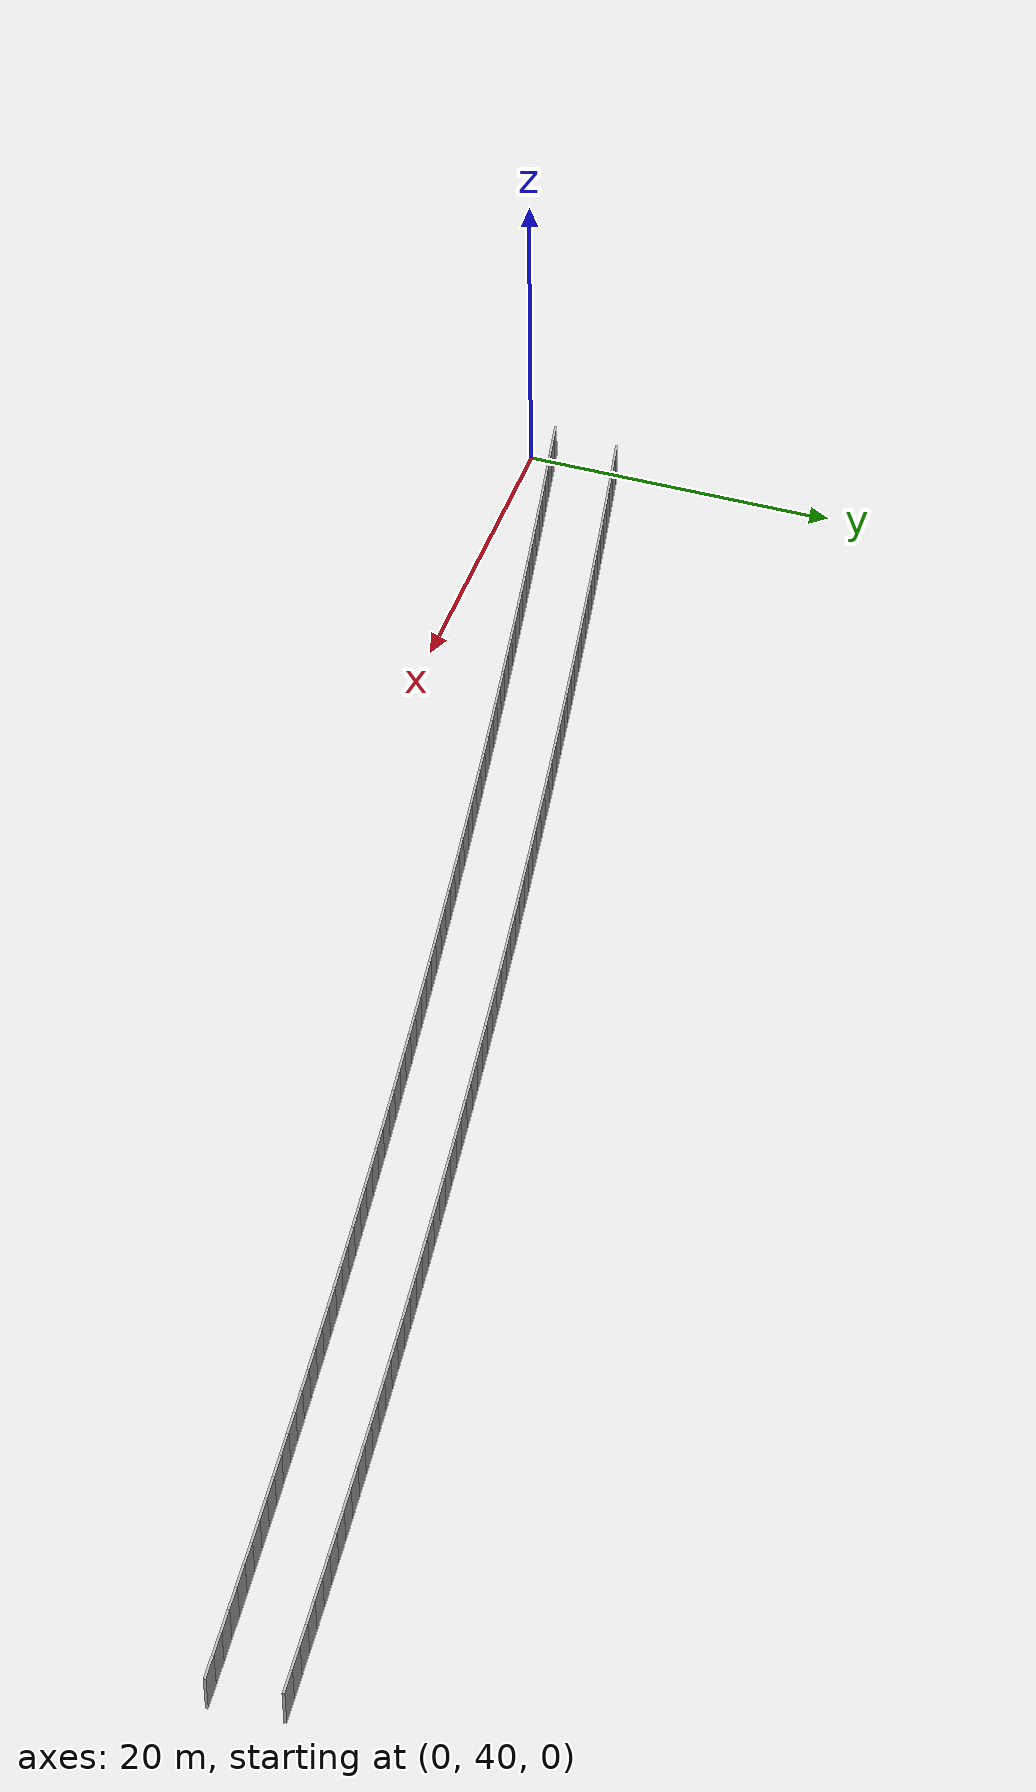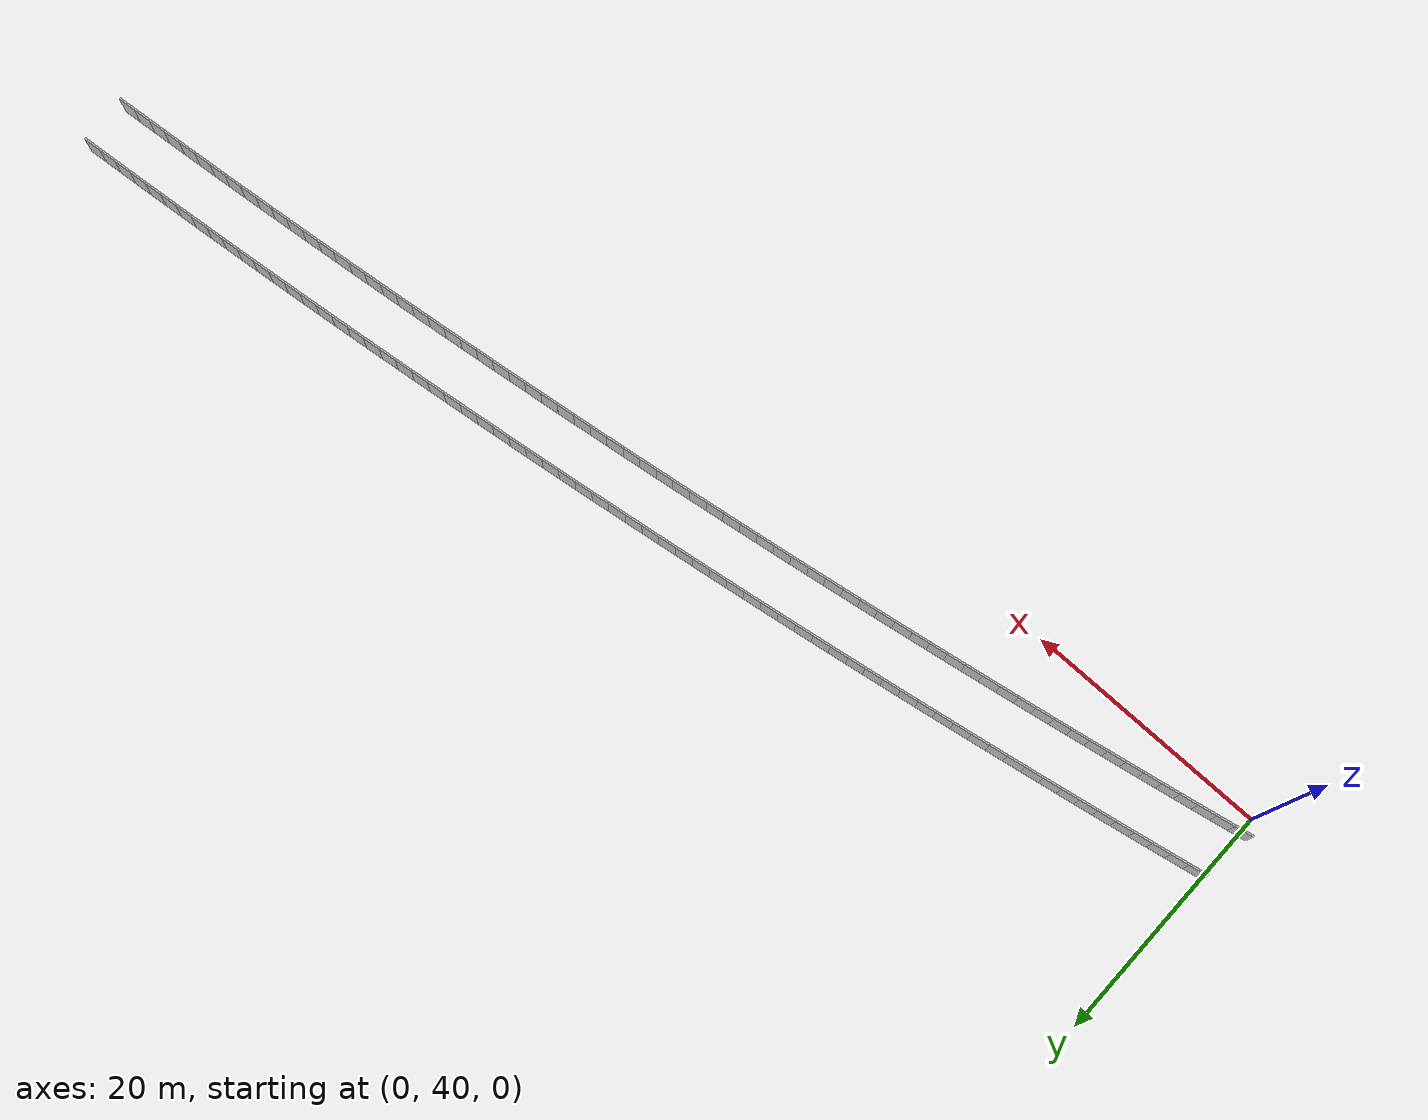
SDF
<sdf version="1.6">
 <model name="sps_1023">
  <static>1</static>
  <allow_auto_disable>0</allow_auto_disable>
  <link name="Wall2959">
   <collision name="collision"><geometry><box><size>1.49658 0.15 2.5</size></box></geometry></collision>
   <visual name="visual">
    <geometry><box><size>1.49658 0.15 2.5</size></box></geometry>
    <transparency>0.0</transparency>
   </visual>
   <pose>99.3093 55.6503 1.25 0 0 -3.05355</pose>
  </link>
  <link name="Wall2960">
   <collision name="collision"><geometry><box><size>1.49641 0.15 2.5</size></box></geometry></collision>
   <visual name="visual">
    <geometry><box><size>1.49641 0.15 2.5</size></box></geometry>
    <transparency>0.0</transparency>
   </visual>
   <pose>97.8187 55.5176 1.25 0 0 -3.05207</pose>
  </link>
  <link name="Wall2961">
   <collision name="collision"><geometry><box><size>1.49665 0.15 2.5</size></box></geometry></collision>
   <visual name="visual">
    <geometry><box><size>1.49665 0.15 2.5</size></box></geometry>
    <transparency>0.0</transparency>
   </visual>
   <pose>96.3282 55.3825 1.25 0 0 -3.05032</pose>
  </link>
  <link name="Wall2962">
   <collision name="collision"><geometry><box><size>1.49644 0.15 2.5</size></box></geometry></collision>
   <visual name="visual">
    <geometry><box><size>1.49644 0.15 2.5</size></box></geometry>
    <transparency>0.0</transparency>
   </visual>
   <pose>94.838 55.2449 1.25 0 0 -3.04871</pose>
  </link>
  <link name="Wall2963">
   <collision name="collision"><geometry><box><size>1.49646 0.15 2.5</size></box></geometry></collision>
   <visual name="visual">
    <geometry><box><size>1.49646 0.15 2.5</size></box></geometry>
    <transparency>0.0</transparency>
   </visual>
   <pose>93.3481 55.105 1.25 0 0 -3.04724</pose>
  </link>
  <link name="Wall2964">
   <collision name="collision"><geometry><box><size>1.49647 0.15 2.5</size></box></geometry></collision>
   <visual name="visual">
    <geometry><box><size>1.49647 0.15 2.5</size></box></geometry>
    <transparency>0.0</transparency>
   </visual>
   <pose>91.8585 54.9627 1.25 0 0 -3.04548</pose>
  </link>
  <link name="Wall2965">
   <collision name="collision"><geometry><box><size>1.49656 0.15 2.5</size></box></geometry></collision>
   <visual name="visual">
    <geometry><box><size>1.49656 0.15 2.5</size></box></geometry>
    <transparency>0.0</transparency>
   </visual>
   <pose>90.3689 54.818 1.25 0 0 -3.04401</pose>
  </link>
  <link name="Wall2966">
   <collision name="collision"><geometry><box><size>1.49653 0.15 2.5</size></box></geometry></collision>
   <visual name="visual">
    <geometry><box><size>1.49653 0.15 2.5</size></box></geometry>
    <transparency>0.0</transparency>
   </visual>
   <pose>88.8796 54.6711 1.25 0 0 -3.04257</pose>
  </link>
  <link name="Wall2967">
   <collision name="collision"><geometry><box><size>1.49635 0.15 2.5</size></box></geometry></collision>
   <visual name="visual">
    <geometry><box><size>1.49635 0.15 2.5</size></box></geometry>
    <transparency>0.0</transparency>
   </visual>
   <pose>87.3906 54.5219 1.25 0 0 -3.04088</pose>
  </link>
  <link name="Wall2968">
   <collision name="collision"><geometry><box><size>1.49665 0.15 2.5</size></box></geometry></collision>
   <visual name="visual">
    <geometry><box><size>1.49665 0.15 2.5</size></box></geometry>
    <transparency>0.0</transparency>
   </visual>
   <pose>85.9018 54.3703 1.25 0 0 -3.03934</pose>
  </link>
  <link name="Wall2969">
   <collision name="collision"><geometry><box><size>1.49647 0.15 2.5</size></box></geometry></collision>
   <visual name="visual">
    <geometry><box><size>1.49647 0.15 2.5</size></box></geometry>
    <transparency>0.0</transparency>
   </visual>
   <pose>84.4132 54.2163 1.25 0 0 -3.03769</pose>
  </link>
  <link name="Wall2970">
   <collision name="collision"><geometry><box><size>1.49648 0.15 2.5</size></box></geometry></collision>
   <visual name="visual">
    <geometry><box><size>1.49648 0.15 2.5</size></box></geometry>
    <transparency>0.0</transparency>
   </visual>
   <pose>82.9249 54.0599 1.25 0 0 -3.03609</pose>
  </link>
  <link name="Wall2971">
   <collision name="collision"><geometry><box><size>1.49637 0.15 2.5</size></box></geometry></collision>
   <visual name="visual">
    <geometry><box><size>1.49637 0.15 2.5</size></box></geometry>
    <transparency>0.0</transparency>
   </visual>
   <pose>81.437 53.9011 1.25 0 0 -3.03448</pose>
  </link>
  <link name="Wall2972">
   <collision name="collision"><geometry><box><size>1.49661 0.15 2.5</size></box></geometry></collision>
   <visual name="visual">
    <geometry><box><size>1.49661 0.15 2.5</size></box></geometry>
    <transparency>0.0</transparency>
   </visual>
   <pose>79.9492 53.74 1.25 0 0 -3.03298</pose>
  </link>
  <link name="Wall2973">
   <collision name="collision"><geometry><box><size>1.49651 0.15 2.5</size></box></geometry></collision>
   <visual name="visual">
    <geometry><box><size>1.49651 0.15 2.5</size></box></geometry>
    <transparency>0.0</transparency>
   </visual>
   <pose>78.4616 53.5766 1.25 0 0 -3.03137</pose>
  </link>
  <link name="Wall2974">
   <collision name="collision"><geometry><box><size>1.49635 0.15 2.5</size></box></geometry></collision>
   <visual name="visual">
    <geometry><box><size>1.49635 0.15 2.5</size></box></geometry>
    <transparency>0.0</transparency>
   </visual>
   <pose>76.9744 53.4108 1.25 0 0 -3.02976</pose>
  </link>
  <link name="Wall2975">
   <collision name="collision"><geometry><box><size>1.49664 0.15 2.5</size></box></geometry></collision>
   <visual name="visual">
    <geometry><box><size>1.49664 0.15 2.5</size></box></geometry>
    <transparency>0.0</transparency>
   </visual>
   <pose>75.4874 53.2425 1.25 0 0 -3.02802</pose>
  </link>
  <link name="Wall2976">
   <collision name="collision"><geometry><box><size>1.49644 0.15 2.5</size></box></geometry></collision>
   <visual name="visual">
    <geometry><box><size>1.49644 0.15 2.5</size></box></geometry>
    <transparency>0.0</transparency>
   </visual>
   <pose>74.0006 53.0719 1.25 0 0 -3.02669</pose>
  </link>
  <link name="Wall2977">
   <collision name="collision"><geometry><box><size>1.49662 0.15 2.5</size></box></geometry></collision>
   <visual name="visual">
    <geometry><box><size>1.49662 0.15 2.5</size></box></geometry>
    <transparency>0.0</transparency>
   </visual>
   <pose>72.5141 52.899 1.25 0 0 -3.02494</pose>
  </link>
  <link name="Wall2978">
   <collision name="collision"><geometry><box><size>1.49639 0.15 2.5</size></box></geometry></collision>
   <visual name="visual">
    <geometry><box><size>1.49639 0.15 2.5</size></box></geometry>
    <transparency>0.0</transparency>
   </visual>
   <pose>71.0279 52.7237 1.25 0 0 -3.02344</pose>
  </link>
  <link name="Wall2979">
   <collision name="collision"><geometry><box><size>1.49656 0.15 2.5</size></box></geometry></collision>
   <visual name="visual">
    <geometry><box><size>1.49656 0.15 2.5</size></box></geometry>
    <transparency>0.0</transparency>
   </visual>
   <pose>69.542 52.5461 1.25 0 0 -3.02181</pose>
  </link>
  <link name="Wall2980">
   <collision name="collision"><geometry><box><size>1.49658 0.15 2.5</size></box></geometry></collision>
   <visual name="visual">
    <geometry><box><size>1.49658 0.15 2.5</size></box></geometry>
    <transparency>0.0</transparency>
   </visual>
   <pose>68.0562 52.3662 1.25 0 0 -3.02037</pose>
  </link>
  <link name="Wall2981">
   <collision name="collision"><geometry><box><size>1.49647 0.15 2.5</size></box></geometry></collision>
   <visual name="visual">
    <geometry><box><size>1.49647 0.15 2.5</size></box></geometry>
    <transparency>0.0</transparency>
   </visual>
   <pose>66.5709 52.1839 1.25 0 0 -3.0186</pose>
  </link>
  <link name="Wall2982">
   <collision name="collision"><geometry><box><size>1.49636 0.15 2.5</size></box></geometry></collision>
   <visual name="visual">
    <geometry><box><size>1.49636 0.15 2.5</size></box></geometry>
    <transparency>0.0</transparency>
   </visual>
   <pose>65.0859 51.9993 1.25 0 0 -3.01723</pose>
  </link>
  <link name="Wall2983">
   <collision name="collision"><geometry><box><size>1.4965 0.15 2.5</size></box></geometry></collision>
   <visual name="visual">
    <geometry><box><size>1.4965 0.15 2.5</size></box></geometry>
    <transparency>0.0</transparency>
   </visual>
   <pose>63.6012 51.8124 1.25 0 0 -3.01548</pose>
  </link>
  <link name="Wall2984">
   <collision name="collision"><geometry><box><size>1.49659 0.15 2.5</size></box></geometry></collision>
   <visual name="visual">
    <geometry><box><size>1.49659 0.15 2.5</size></box></geometry>
    <transparency>0.0</transparency>
   </visual>
   <pose>62.1167 51.6229 1.25 0 0 -3.01376</pose>
  </link>
  <link name="Wall2985">
   <collision name="collision"><geometry><box><size>1.49648 0.15 2.5</size></box></geometry></collision>
   <visual name="visual">
    <geometry><box><size>1.49648 0.15 2.5</size></box></geometry>
    <transparency>0.0</transparency>
   </visual>
   <pose>60.6325 51.4311 1.25 0 0 -3.01239</pose>
  </link>
  <link name="Wall2986">
   <collision name="collision"><geometry><box><size>1.49661 0.15 2.5</size></box></geometry></collision>
   <visual name="visual">
    <geometry><box><size>1.49661 0.15 2.5</size></box></geometry>
    <transparency>0.0</transparency>
   </visual>
   <pose>59.1486 51.2371 1.25 0 0 -3.0108</pose>
  </link>
  <link name="Wall2987">
   <collision name="collision"><geometry><box><size>1.4965 0.15 2.5</size></box></geometry></collision>
   <visual name="visual">
    <geometry><box><size>1.4965 0.15 2.5</size></box></geometry>
    <transparency>0.0</transparency>
   </visual>
   <pose>57.6649 51.0407 1.25 0 0 -3.00918</pose>
  </link>
  <link name="Wall2988">
   <collision name="collision"><geometry><box><size>1.4964 0.15 2.5</size></box></geometry></collision>
   <visual name="visual">
    <geometry><box><size>1.4964 0.15 2.5</size></box></geometry>
    <transparency>0.0</transparency>
   </visual>
   <pose>56.1818 50.8419 1.25 0 0 -3.00753</pose>
  </link>
  <link name="Wall2989">
   <collision name="collision"><geometry><box><size>1.49651 0.15 2.5</size></box></geometry></collision>
   <visual name="visual">
    <geometry><box><size>1.49651 0.15 2.5</size></box></geometry>
    <transparency>0.0</transparency>
   </visual>
   <pose>54.6989 50.6408 1.25 0 0 -3.00606</pose>
  </link>
  <link name="Wall2990">
   <collision name="collision"><geometry><box><size>1.49647 0.15 2.5</size></box></geometry></collision>
   <visual name="visual">
    <geometry><box><size>1.49647 0.15 2.5</size></box></geometry>
    <transparency>0.0</transparency>
   </visual>
   <pose>53.2163 50.4374 1.25 0 0 -3.00445</pose>
  </link>
  <link name="Wall2991">
   <collision name="collision"><geometry><box><size>1.49657 0.15 2.5</size></box></geometry></collision>
   <visual name="visual">
    <geometry><box><size>1.49657 0.15 2.5</size></box></geometry>
    <transparency>0.0</transparency>
   </visual>
   <pose>51.734 50.2316 1.25 0 0 -3.00281</pose>
  </link>
  <link name="Wall2992">
   <collision name="collision"><geometry><box><size>1.49653 0.15 2.5</size></box></geometry></collision>
   <visual name="visual">
    <geometry><box><size>1.49653 0.15 2.5</size></box></geometry>
    <transparency>0.0</transparency>
   </visual>
   <pose>50.252 50.0234 1.25 0 0 -3.00124</pose>
  </link>
  <link name="Wall2993">
   <collision name="collision"><geometry><box><size>1.49646 0.15 2.5</size></box></geometry></collision>
   <visual name="visual">
    <geometry><box><size>1.49646 0.15 2.5</size></box></geometry>
    <transparency>0.0</transparency>
   </visual>
   <pose>48.7704 49.8128 1.25 0 0 -2.99955</pose>
  </link>
  <link name="Wall2994">
   <collision name="collision"><geometry><box><size>1.4964 0.15 2.5</size></box></geometry></collision>
   <visual name="visual">
    <geometry><box><size>1.4964 0.15 2.5</size></box></geometry>
    <transparency>0.0</transparency>
   </visual>
   <pose>47.2892 49.5999 1.25 0 0 -2.9981</pose>
  </link>
  <link name="Wall2995">
   <collision name="collision"><geometry><box><size>1.49656 0.15 2.5</size></box></geometry></collision>
   <visual name="visual">
    <geometry><box><size>1.49656 0.15 2.5</size></box></geometry>
    <transparency>0.0</transparency>
   </visual>
   <pose>45.8082 49.3847 1.25 0 0 -2.99651</pose>
  </link>
  <link name="Wall2996">
   <collision name="collision"><geometry><box><size>1.4964 0.15 2.5</size></box></geometry></collision>
   <visual name="visual">
    <geometry><box><size>1.4964 0.15 2.5</size></box></geometry>
    <transparency>0.0</transparency>
   </visual>
   <pose>44.3277 49.1672 1.25 0 0 -2.99497</pose>
  </link>
  <link name="Wall2997">
   <collision name="collision"><geometry><box><size>1.49666 0.15 2.5</size></box></geometry></collision>
   <visual name="visual">
    <geometry><box><size>1.49666 0.15 2.5</size></box></geometry>
    <transparency>0.0</transparency>
   </visual>
   <pose>42.8474 48.9473 1.25 0 0 -2.99326</pose>
  </link>
  <link name="Wall2998">
   <collision name="collision"><geometry><box><size>1.49636 0.15 2.5</size></box></geometry></collision>
   <visual name="visual">
    <geometry><box><size>1.49636 0.15 2.5</size></box></geometry>
    <transparency>0.0</transparency>
   </visual>
   <pose>41.3675 48.7251 1.25 0 0 -2.99187</pose>
  </link>
  <link name="Wall2999">
   <collision name="collision"><geometry><box><size>1.4965 0.15 2.5</size></box></geometry></collision>
   <visual name="visual">
    <geometry><box><size>1.4965 0.15 2.5</size></box></geometry>
    <transparency>0.0</transparency>
   </visual>
   <pose>39.888 48.5006 1.25 0 0 -2.99015</pose>
  </link>
  <link name="Wall3000">
   <collision name="collision"><geometry><box><size>1.49648 0.15 2.5</size></box></geometry></collision>
   <visual name="visual">
    <geometry><box><size>1.49648 0.15 2.5</size></box></geometry>
    <transparency>0.0</transparency>
   </visual>
   <pose>38.4088 48.2737 1.25 0 0 -2.98862</pose>
  </link>
  <link name="Wall3001">
   <collision name="collision"><geometry><box><size>1.49648 0.15 2.5</size></box></geometry></collision>
   <visual name="visual">
    <geometry><box><size>1.49648 0.15 2.5</size></box></geometry>
    <transparency>0.0</transparency>
   </visual>
   <pose>36.93 48.0445 1.25 0 0 -2.98701</pose>
  </link>
  <link name="Wall3002">
   <collision name="collision"><geometry><box><size>1.49661 0.15 2.5</size></box></geometry></collision>
   <visual name="visual">
    <geometry><box><size>1.49661 0.15 2.5</size></box></geometry>
    <transparency>0.0</transparency>
   </visual>
   <pose>35.4514 47.8129 1.25 0 0 -2.98541</pose>
  </link>
  <link name="Wall3003">
   <collision name="collision"><geometry><box><size>1.49638 0.15 2.5</size></box></geometry></collision>
   <visual name="visual">
    <geometry><box><size>1.49638 0.15 2.5</size></box></geometry>
    <transparency>0.0</transparency>
   </visual>
   <pose>33.9733 47.5789 1.25 0 0 -2.98378</pose>
  </link>
  <link name="Wall3004">
   <collision name="collision"><geometry><box><size>1.49658 0.15 2.5</size></box></geometry></collision>
   <visual name="visual">
    <geometry><box><size>1.49658 0.15 2.5</size></box></geometry>
    <transparency>0.0</transparency>
   </visual>
   <pose>32.4957 47.3425 1.25 0 0 -2.98215</pose>
  </link>
  <link name="Wall3005">
   <collision name="collision"><geometry><box><size>1.49648 0.15 2.5</size></box></geometry></collision>
   <visual name="visual">
    <geometry><box><size>1.49648 0.15 2.5</size></box></geometry>
    <transparency>0.0</transparency>
   </visual>
   <pose>31.0183 47.1039 1.25 0 0 -2.98078</pose>
  </link>
  <link name="Wall3006">
   <collision name="collision"><geometry><box><size>1.49653 0.15 2.5</size></box></geometry></collision>
   <visual name="visual">
    <geometry><box><size>1.49653 0.15 2.5</size></box></geometry>
    <transparency>0.0</transparency>
   </visual>
   <pose>29.5413 46.863 1.25 0 0 -2.97905</pose>
  </link>
  <link name="Wall3007">
   <collision name="collision"><geometry><box><size>1.49657 0.15 2.5</size></box></geometry></collision>
   <visual name="visual">
    <geometry><box><size>1.49657 0.15 2.5</size></box></geometry>
    <transparency>0.0</transparency>
   </visual>
   <pose>28.0647 46.6196 1.25 0 0 -2.9774</pose>
  </link>
  <link name="Wall3008">
   <collision name="collision"><geometry><box><size>1.49644 0.15 2.5</size></box></geometry></collision>
   <visual name="visual">
    <geometry><box><size>1.49644 0.15 2.5</size></box></geometry>
    <transparency>0.0</transparency>
   </visual>
   <pose>26.5885 46.3739 1.25 0 0 -2.97593</pose>
  </link>
  <link name="Wall3009">
   <collision name="collision"><geometry><box><size>1.49654 0.15 2.5</size></box></geometry></collision>
   <visual name="visual">
    <geometry><box><size>1.49654 0.15 2.5</size></box></geometry>
    <transparency>0.0</transparency>
   </visual>
   <pose>25.1127 46.1259 1.25 0 0 -2.97429</pose>
  </link>
  <link name="Wall3010">
   <collision name="collision"><geometry><box><size>1.49646 0.15 2.5</size></box></geometry></collision>
   <visual name="visual">
    <geometry><box><size>1.49646 0.15 2.5</size></box></geometry>
    <transparency>0.0</transparency>
   </visual>
   <pose>23.6373 45.8755 1.25 0 0 -2.97267</pose>
  </link>
  <link name="Wall3011">
   <collision name="collision"><geometry><box><size>1.49654 0.15 2.5</size></box></geometry></collision>
   <visual name="visual">
    <geometry><box><size>1.49654 0.15 2.5</size></box></geometry>
    <transparency>0.0</transparency>
   </visual>
   <pose>22.1623 45.6228 1.25 0 0 -2.97115</pose>
  </link>
  <link name="Wall3012">
   <collision name="collision"><geometry><box><size>1.49627 0.15 2.5</size></box></geometry></collision>
   <visual name="visual">
    <geometry><box><size>1.49627 0.15 2.5</size></box></geometry>
    <transparency>0.0</transparency>
   </visual>
   <pose>20.6877 45.3678 1.25 0 0 -2.96954</pose>
  </link>
  <link name="Wall3013">
   <collision name="collision"><geometry><box><size>1.49644 0.15 2.5</size></box></geometry></collision>
   <visual name="visual">
    <geometry><box><size>1.49644 0.15 2.5</size></box></geometry>
    <transparency>0.0</transparency>
   </visual>
   <pose>19.2136 45.1106 1.25 0 0 -2.9682</pose>
  </link>
  <link name="Wall3014">
   <collision name="collision"><geometry><box><size>1.49647 0.15 2.5</size></box></geometry></collision>
   <visual name="visual">
    <geometry><box><size>1.49647 0.15 2.5</size></box></geometry>
    <transparency>0.0</transparency>
   </visual>
   <pose>17.7399 44.8511 1.25 0 0 -2.96642</pose>
  </link>
  <link name="Wall3015">
   <collision name="collision"><geometry><box><size>1.49654 0.15 2.5</size></box></geometry></collision>
   <visual name="visual">
    <geometry><box><size>1.49654 0.15 2.5</size></box></geometry>
    <transparency>0.0</transparency>
   </visual>
   <pose>16.2665 44.5891 1.25 0 0 -2.96477</pose>
  </link>
  <link name="Wall3016">
   <collision name="collision"><geometry><box><size>1.49659 0.15 2.5</size></box></geometry></collision>
   <visual name="visual">
    <geometry><box><size>1.49659 0.15 2.5</size></box></geometry>
    <transparency>0.0</transparency>
   </visual>
   <pose>14.7934 44.3247 1.25 0 0 -2.9632</pose>
  </link>
  <link name="Wall3017">
   <collision name="collision"><geometry><box><size>1.49651 0.15 2.5</size></box></geometry></collision>
   <visual name="visual">
    <geometry><box><size>1.49651 0.15 2.5</size></box></geometry>
    <transparency>0.0</transparency>
   </visual>
   <pose>13.3209 44.058 1.25 0 0 -2.96166</pose>
  </link>
  <link name="Wall3018">
   <collision name="collision"><geometry><box><size>1.49637 0.15 2.5</size></box></geometry></collision>
   <visual name="visual">
    <geometry><box><size>1.49637 0.15 2.5</size></box></geometry>
    <transparency>0.0</transparency>
   </visual>
   <pose>11.8488 43.7891 1.25 0 0 -2.96015</pose>
  </link>
  <link name="Wall3019">
   <collision name="collision"><geometry><box><size>1.49665 0.15 2.5</size></box></geometry></collision>
   <visual name="visual">
    <geometry><box><size>1.49665 0.15 2.5</size></box></geometry>
    <transparency>0.0</transparency>
   </visual>
   <pose>10.3771 43.5178 1.25 0 0 -2.95844</pose>
  </link>
  <link name="Wall3020">
   <collision name="collision"><geometry><box><size>1.49649 0.15 2.5</size></box></geometry></collision>
   <visual name="visual">
    <geometry><box><size>1.49649 0.15 2.5</size></box></geometry>
    <transparency>0.0</transparency>
   </visual>
   <pose>8.90575 43.244 1.25 0 0 -2.9568</pose>
  </link>
  <link name="Wall3021">
   <collision name="collision"><geometry><box><size>1.49666 0.15 2.5</size></box></geometry></collision>
   <visual name="visual">
    <geometry><box><size>1.49666 0.15 2.5</size></box></geometry>
    <transparency>0.0</transparency>
   </visual>
   <pose>7.43487 42.9679 1.25 0 0 -2.95529</pose>
  </link>
  <link name="Wall3022">
   <collision name="collision"><geometry><box><size>1.49635 0.15 2.5</size></box></geometry></collision>
   <visual name="visual">
    <geometry><box><size>1.49635 0.15 2.5</size></box></geometry>
    <transparency>0.0</transparency>
   </visual>
   <pose>5.96447 42.6896 1.25 0 0 -2.95376</pose>
  </link>
  <link name="Wall3023">
   <collision name="collision"><geometry><box><size>1.49659 0.15 2.5</size></box></geometry></collision>
   <visual name="visual">
    <geometry><box><size>1.49659 0.15 2.5</size></box></geometry>
    <transparency>0.0</transparency>
   </visual>
   <pose>4.49456 42.4089 1.25 0 0 -2.95204</pose>
  </link>
  <link name="Wall3024">
   <collision name="collision"><geometry><box><size>1.49647 0.15 2.5</size></box></geometry></collision>
   <visual name="visual">
    <geometry><box><size>1.49647 0.15 2.5</size></box></geometry>
    <transparency>0.0</transparency>
   </visual>
   <pose>3.02505 42.1258 1.25 0 0 -2.95053</pose>
  </link>
  <link name="Wall3025">
   <collision name="collision"><geometry><box><size>1.49642 0.15 2.5</size></box></geometry></collision>
   <visual name="visual">
    <geometry><box><size>1.49642 0.15 2.5</size></box></geometry>
    <transparency>0.0</transparency>
   </visual>
   <pose>1.55605 41.8405 1.25 0 0 -2.94899</pose>
  </link>
  <link name="Wall3026">
   <collision name="collision"><geometry><box><size>1.49657 0.15 2.5</size></box></geometry></collision>
   <visual name="visual">
    <geometry><box><size>1.49657 0.15 2.5</size></box></geometry>
    <transparency>0.0</transparency>
   </visual>
   <pose>0.0874551 41.5529 1.25 0 0 -2.94743</pose>
  </link>
  <link name="Wall5570">
   <collision name="collision"><geometry><box><size>1.50308 0.15 2.5</size></box></geometry></collision>
   <visual name="visual">
    <geometry><box><size>1.50308 0.15 2.5</size></box></geometry>
    <transparency>0.0</transparency>
   </visual>
   <pose>98.9415 59.7736 1.25 0 0 -3.05352</pose>
  </link>
  <link name="Wall5571">
   <collision name="collision"><geometry><box><size>1.50323 0.15 2.5</size></box></geometry></collision>
   <visual name="visual">
    <geometry><box><size>1.50323 0.15 2.5</size></box></geometry>
    <transparency>0.0</transparency>
   </visual>
   <pose>97.4442 59.6402 1.25 0 0 -3.05194</pose>
  </link>
  <link name="Wall5572">
   <collision name="collision"><geometry><box><size>1.50302 0.15 2.5</size></box></geometry></collision>
   <visual name="visual">
    <geometry><box><size>1.50302 0.15 2.5</size></box></geometry>
    <transparency>0.0</transparency>
   </visual>
   <pose>95.9473 59.5044 1.25 0 0 -3.0503</pose>
  </link>
  <link name="Wall5573">
   <collision name="collision"><geometry><box><size>1.50312 0.15 2.5</size></box></geometry></collision>
   <visual name="visual">
    <geometry><box><size>1.50312 0.15 2.5</size></box></geometry>
    <transparency>0.0</transparency>
   </visual>
   <pose>94.4506 59.3662 1.25 0 0 -3.04876</pose>
  </link>
  <link name="Wall5574">
   <collision name="collision"><geometry><box><size>1.50308 0.15 2.5</size></box></geometry></collision>
   <visual name="visual">
    <geometry><box><size>1.50308 0.15 2.5</size></box></geometry>
    <transparency>0.0</transparency>
   </visual>
   <pose>92.954 59.2257 1.25 0 0 -3.04725</pose>
  </link>
  <link name="Wall5575">
   <collision name="collision"><geometry><box><size>1.50289 0.15 2.5</size></box></geometry></collision>
   <visual name="visual">
    <geometry><box><size>1.50289 0.15 2.5</size></box></geometry>
    <transparency>0.0</transparency>
   </visual>
   <pose>91.4578 59.0829 1.25 0 0 -3.0456</pose>
  </link>
  <link name="Wall5576">
   <collision name="collision"><geometry><box><size>1.5032 0.15 2.5</size></box></geometry></collision>
   <visual name="visual">
    <geometry><box><size>1.5032 0.15 2.5</size></box></geometry>
    <transparency>0.0</transparency>
   </visual>
   <pose>89.9618 58.9376 1.25 0 0 -3.04391</pose>
  </link>
  <link name="Wall5577">
   <collision name="collision"><geometry><box><size>1.50315 0.15 2.5</size></box></geometry></collision>
   <visual name="visual">
    <geometry><box><size>1.50315 0.15 2.5</size></box></geometry>
    <transparency>0.0</transparency>
   </visual>
   <pose>88.4659 58.79 1.25 0 0 -3.0426</pose>
  </link>
  <link name="Wall5578">
   <collision name="collision"><geometry><box><size>1.50323 0.15 2.5</size></box></geometry></collision>
   <visual name="visual">
    <geometry><box><size>1.50323 0.15 2.5</size></box></geometry>
    <transparency>0.0</transparency>
   </visual>
   <pose>86.9702 58.6401 1.25 0 0 -3.04081</pose>
  </link>
  <link name="Wall5579">
   <collision name="collision"><geometry><box><size>1.50284 0.15 2.5</size></box></geometry></collision>
   <visual name="visual">
    <geometry><box><size>1.50284 0.15 2.5</size></box></geometry>
    <transparency>0.0</transparency>
   </visual>
   <pose>85.4749 58.4878 1.25 0 0 -3.03935</pose>
  </link>
  <link name="Wall5580">
   <collision name="collision"><geometry><box><size>1.50311 0.15 2.5</size></box></geometry></collision>
   <visual name="visual">
    <geometry><box><size>1.50311 0.15 2.5</size></box></geometry>
    <transparency>0.0</transparency>
   </visual>
   <pose>83.9799 58.3331 1.25 0 0 -3.03762</pose>
  </link>
  <link name="Wall5581">
   <collision name="collision"><geometry><box><size>1.50318 0.15 2.5</size></box></geometry></collision>
   <visual name="visual">
    <geometry><box><size>1.50318 0.15 2.5</size></box></geometry>
    <transparency>0.0</transparency>
   </visual>
   <pose>82.485 58.1759 1.25 0 0 -3.03603</pose>
  </link>
  <link name="Wall5582">
   <collision name="collision"><geometry><box><size>1.50299 0.15 2.5</size></box></geometry></collision>
   <visual name="visual">
    <geometry><box><size>1.50299 0.15 2.5</size></box></geometry>
    <transparency>0.0</transparency>
   </visual>
   <pose>80.9904 58.0164 1.25 0 0 -3.03455</pose>
  </link>
  <link name="Wall5583">
   <collision name="collision"><geometry><box><size>1.50307 0.15 2.5</size></box></geometry></collision>
   <visual name="visual">
    <geometry><box><size>1.50307 0.15 2.5</size></box></geometry>
    <transparency>0.0</transparency>
   </visual>
   <pose>79.4961 57.8546 1.25 0 0 -3.03292</pose>
  </link>
  <link name="Wall5584">
   <collision name="collision"><geometry><box><size>1.50315 0.15 2.5</size></box></geometry></collision>
   <visual name="visual">
    <geometry><box><size>1.50315 0.15 2.5</size></box></geometry>
    <transparency>0.0</transparency>
   </visual>
   <pose>78.002 57.6904 1.25 0 0 -3.03133</pose>
  </link>
  <link name="Wall5585">
   <collision name="collision"><geometry><box><size>1.50297 0.15 2.5</size></box></geometry></collision>
   <visual name="visual">
    <geometry><box><size>1.50297 0.15 2.5</size></box></geometry>
    <transparency>0.0</transparency>
   </visual>
   <pose>76.5082 57.5239 1.25 0 0 -3.02985</pose>
  </link>
  <link name="Wall5586">
   <collision name="collision"><geometry><box><size>1.50325 0.15 2.5</size></box></geometry></collision>
   <visual name="visual">
    <geometry><box><size>1.50325 0.15 2.5</size></box></geometry>
    <transparency>0.0</transparency>
   </visual>
   <pose>75.0146 57.355 1.25 0 0 -3.02815</pose>
  </link>
  <link name="Wall5587">
   <collision name="collision"><geometry><box><size>1.5029 0.15 2.5</size></box></geometry></collision>
   <visual name="visual">
    <geometry><box><size>1.5029 0.15 2.5</size></box></geometry>
    <transparency>0.0</transparency>
   </visual>
   <pose>73.5214 57.1837 1.25 0 0 -3.02661</pose>
  </link>
  <link name="Wall5588">
   <collision name="collision"><geometry><box><size>1.50318 0.15 2.5</size></box></geometry></collision>
   <visual name="visual">
    <geometry><box><size>1.50318 0.15 2.5</size></box></geometry>
    <transparency>0.0</transparency>
   </visual>
   <pose>72.0284 57.0101 1.25 0 0 -3.02504</pose>
  </link>
  <link name="Wall5589">
   <collision name="collision"><geometry><box><size>1.50309 0.15 2.5</size></box></geometry></collision>
   <visual name="visual">
    <geometry><box><size>1.50309 0.15 2.5</size></box></geometry>
    <transparency>0.0</transparency>
   </visual>
   <pose>70.5356 56.8341 1.25 0 0 -3.02344</pose>
  </link>
  <link name="Wall5590">
   <collision name="collision"><geometry><box><size>1.5032 0.15 2.5</size></box></geometry></collision>
   <visual name="visual">
    <geometry><box><size>1.5032 0.15 2.5</size></box></geometry>
    <transparency>0.0</transparency>
   </visual>
   <pose>69.0431 56.6557 1.25 0 0 -3.02181</pose>
  </link>
  <link name="Wall5591">
   <collision name="collision"><geometry><box><size>1.50306 0.15 2.5</size></box></geometry></collision>
   <visual name="visual">
    <geometry><box><size>1.50306 0.15 2.5</size></box></geometry>
    <transparency>0.0</transparency>
   </visual>
   <pose>67.5508 56.4749 1.25 0 0 -3.0202</pose>
  </link>
  <link name="Wall5592">
   <collision name="collision"><geometry><box><size>1.50293 0.15 2.5</size></box></geometry></collision>
   <visual name="visual">
    <geometry><box><size>1.50293 0.15 2.5</size></box></geometry>
    <transparency>0.0</transparency>
   </visual>
   <pose>66.059 56.2917 1.25 0 0 -3.0186</pose>
  </link>
  <link name="Wall5593">
   <collision name="collision"><geometry><box><size>1.503 0.15 2.5</size></box></geometry></collision>
   <visual name="visual">
    <geometry><box><size>1.503 0.15 2.5</size></box></geometry>
    <transparency>0.0</transparency>
   </visual>
   <pose>64.5676 56.1063 1.25 0 0 -3.01725</pose>
  </link>
  <link name="Wall5594">
   <collision name="collision"><geometry><box><size>1.50314 0.15 2.5</size></box></geometry></collision>
   <visual name="visual">
    <geometry><box><size>1.50314 0.15 2.5</size></box></geometry>
    <transparency>0.0</transparency>
   </visual>
   <pose>63.0763 55.9186 1.25 0 0 -3.01555</pose>
  </link>
  <link name="Wall5595">
   <collision name="collision"><geometry><box><size>1.50302 0.15 2.5</size></box></geometry></collision>
   <visual name="visual">
    <geometry><box><size>1.50302 0.15 2.5</size></box></geometry>
    <transparency>0.0</transparency>
   </visual>
   <pose>61.5853 55.7284 1.25 0 0 -3.0139</pose>
  </link>
  <link name="Wall5596">
   <collision name="collision"><geometry><box><size>1.50296 0.15 2.5</size></box></geometry></collision>
   <visual name="visual">
    <geometry><box><size>1.50296 0.15 2.5</size></box></geometry>
    <transparency>0.0</transparency>
   </visual>
   <pose>60.0947 55.5358 1.25 0 0 -3.0123</pose>
  </link>
  <link name="Wall5597">
   <collision name="collision"><geometry><box><size>1.50328 0.15 2.5</size></box></geometry></collision>
   <visual name="visual">
    <geometry><box><size>1.50328 0.15 2.5</size></box></geometry>
    <transparency>0.0</transparency>
   </visual>
   <pose>58.6042 55.3408 1.25 0 0 -3.01069</pose>
  </link>
  <link name="Wall5598">
   <collision name="collision"><geometry><box><size>1.50317 0.15 2.5</size></box></geometry></collision>
   <visual name="visual">
    <geometry><box><size>1.50317 0.15 2.5</size></box></geometry>
    <transparency>0.0</transparency>
   </visual>
   <pose>57.114 55.1434 1.25 0 0 -3.00908</pose>
  </link>
  <link name="Wall5599">
   <collision name="collision"><geometry><box><size>1.50304 0.15 2.5</size></box></geometry></collision>
   <visual name="visual">
    <geometry><box><size>1.50304 0.15 2.5</size></box></geometry>
    <transparency>0.0</transparency>
   </visual>
   <pose>55.6243 54.9437 1.25 0 0 -3.00759</pose>
  </link>
  <link name="Wall5600">
   <collision name="collision"><geometry><box><size>1.50299 0.15 2.5</size></box></geometry></collision>
   <visual name="visual">
    <geometry><box><size>1.50299 0.15 2.5</size></box></geometry>
    <transparency>0.0</transparency>
   </visual>
   <pose>54.1349 54.7417 1.25 0 0 -3.00599</pose>
  </link>
  <link name="Wall5601">
   <collision name="collision"><geometry><box><size>1.50311 0.15 2.5</size></box></geometry></collision>
   <visual name="visual">
    <geometry><box><size>1.50311 0.15 2.5</size></box></geometry>
    <transparency>0.0</transparency>
   </visual>
   <pose>52.6458 54.5374 1.25 0 0 -3.00453</pose>
  </link>
  <link name="Wall5602">
   <collision name="collision"><geometry><box><size>1.50329 0.15 2.5</size></box></geometry></collision>
   <visual name="visual">
    <geometry><box><size>1.50329 0.15 2.5</size></box></geometry>
    <transparency>0.0</transparency>
   </visual>
   <pose>51.1569 54.3307 1.25 0 0 -3.00278</pose>
  </link>
  <link name="Wall5603">
   <collision name="collision"><geometry><box><size>1.50293 0.15 2.5</size></box></geometry></collision>
   <visual name="visual">
    <geometry><box><size>1.50293 0.15 2.5</size></box></geometry>
    <transparency>0.0</transparency>
   </visual>
   <pose>49.6684 54.1216 1.25 0 0 -3.00127</pose>
  </link>
  <link name="Wall5604">
   <collision name="collision"><geometry><box><size>1.50315 0.15 2.5</size></box></geometry></collision>
   <visual name="visual">
    <geometry><box><size>1.50315 0.15 2.5</size></box></geometry>
    <transparency>0.0</transparency>
   </visual>
   <pose>48.1803 53.9102 1.25 0 0 -2.99969</pose>
  </link>
  <link name="Wall5605">
   <collision name="collision"><geometry><box><size>1.50307 0.15 2.5</size></box></geometry></collision>
   <visual name="visual">
    <geometry><box><size>1.50307 0.15 2.5</size></box></geometry>
    <transparency>0.0</transparency>
   </visual>
   <pose>46.6924 53.6964 1.25 0 0 -2.99804</pose>
  </link>
  <link name="Wall5606">
   <collision name="collision"><geometry><box><size>1.50299 0.15 2.5</size></box></geometry></collision>
   <visual name="visual">
    <geometry><box><size>1.50299 0.15 2.5</size></box></geometry>
    <transparency>0.0</transparency>
   </visual>
   <pose>45.205 53.4802 1.25 0 0 -2.99643</pose>
  </link>
  <link name="Wall5607">
   <collision name="collision"><geometry><box><size>1.50313 0.15 2.5</size></box></geometry></collision>
   <visual name="visual">
    <geometry><box><size>1.50313 0.15 2.5</size></box></geometry>
    <transparency>0.0</transparency>
   </visual>
   <pose>43.7179 53.2617 1.25 0 0 -2.99497</pose>
  </link>
  <link name="Wall5608">
   <collision name="collision"><geometry><box><size>1.50303 0.15 2.5</size></box></geometry></collision>
   <visual name="visual">
    <geometry><box><size>1.50303 0.15 2.5</size></box></geometry>
    <transparency>0.0</transparency>
   </visual>
   <pose>42.2312 53.041 1.25 0 0 -2.99348</pose>
  </link>
  <link name="Wall5609">
   <collision name="collision"><geometry><box><size>1.50305 0.15 2.5</size></box></geometry></collision>
   <visual name="visual">
    <geometry><box><size>1.50305 0.15 2.5</size></box></geometry>
    <transparency>0.0</transparency>
   </visual>
   <pose>40.7448 52.8179 1.25 0 0 -2.99176</pose>
  </link>
  <link name="Wall5610">
   <collision name="collision"><geometry><box><size>1.50305 0.15 2.5</size></box></geometry></collision>
   <visual name="visual">
    <geometry><box><size>1.50305 0.15 2.5</size></box></geometry>
    <transparency>0.0</transparency>
   </visual>
   <pose>39.2588 52.5923 1.25 0 0 -2.99012</pose>
  </link>
  <link name="Wall5611">
   <collision name="collision"><geometry><box><size>1.50317 0.15 2.5</size></box></geometry></collision>
   <visual name="visual">
    <geometry><box><size>1.50317 0.15 2.5</size></box></geometry>
    <transparency>0.0</transparency>
   </visual>
   <pose>37.773 52.3643 1.25 0 0 -2.98853</pose>
  </link>
  <link name="Wall5612">
   <collision name="collision"><geometry><box><size>1.50309 0.15 2.5</size></box></geometry></collision>
   <visual name="visual">
    <geometry><box><size>1.50309 0.15 2.5</size></box></geometry>
    <transparency>0.0</transparency>
   </visual>
   <pose>36.2877 52.134 1.25 0 0 -2.987</pose>
  </link>
  <link name="Wall5613">
   <collision name="collision"><geometry><box><size>1.50312 0.15 2.5</size></box></geometry></collision>
   <visual name="visual">
    <geometry><box><size>1.50312 0.15 2.5</size></box></geometry>
    <transparency>0.0</transparency>
   </visual>
   <pose>34.8027 51.9013 1.25 0 0 -2.98532</pose>
  </link>
  <link name="Wall5614">
   <collision name="collision"><geometry><box><size>1.50329 0.15 2.5</size></box></geometry></collision>
   <visual name="visual">
    <geometry><box><size>1.50329 0.15 2.5</size></box></geometry>
    <transparency>0.0</transparency>
   </visual>
   <pose>33.318 51.6662 1.25 0 0 -2.98381</pose>
  </link>
  <link name="Wall5615">
   <collision name="collision"><geometry><box><size>1.5028 0.15 2.5</size></box></geometry></collision>
   <visual name="visual">
    <geometry><box><size>1.5028 0.15 2.5</size></box></geometry>
    <transparency>0.0</transparency>
   </visual>
   <pose>31.8338 51.4289 1.25 0 0 -2.98228</pose>
  </link>
  <link name="Wall5616">
   <collision name="collision"><geometry><box><size>1.50309 0.15 2.5</size></box></geometry></collision>
   <visual name="visual">
    <geometry><box><size>1.50309 0.15 2.5</size></box></geometry>
    <transparency>0.0</transparency>
   </visual>
   <pose>30.3501 51.1892 1.25 0 0 -2.98054</pose>
  </link>
  <link name="Wall5617">
   <collision name="collision"><geometry><box><size>1.50296 0.15 2.5</size></box></geometry></collision>
   <visual name="visual">
    <geometry><box><size>1.50296 0.15 2.5</size></box></geometry>
    <transparency>0.0</transparency>
   </visual>
   <pose>28.8667 50.9471 1.25 0 0 -2.97909</pose>
  </link>
  <link name="Wall5618">
   <collision name="collision"><geometry><box><size>1.50323 0.15 2.5</size></box></geometry></collision>
   <visual name="visual">
    <geometry><box><size>1.50323 0.15 2.5</size></box></geometry>
    <transparency>0.0</transparency>
   </visual>
   <pose>27.3836 50.7027 1.25 0 0 -2.97747</pose>
  </link>
  <link name="Wall5619">
   <collision name="collision"><geometry><box><size>1.50303 0.15 2.5</size></box></geometry></collision>
   <visual name="visual">
    <geometry><box><size>1.50303 0.15 2.5</size></box></geometry>
    <transparency>0.0</transparency>
   </visual>
   <pose>25.9008 50.4559 1.25 0 0 -2.9758</pose>
  </link>
  <link name="Wall5620">
   <collision name="collision"><geometry><box><size>1.50314 0.15 2.5</size></box></geometry></collision>
   <visual name="visual">
    <geometry><box><size>1.50314 0.15 2.5</size></box></geometry>
    <transparency>0.0</transparency>
   </visual>
   <pose>24.4185 50.2068 1.25 0 0 -2.97437</pose>
  </link>
  <link name="Wall5621">
   <collision name="collision"><geometry><box><size>1.50318 0.15 2.5</size></box></geometry></collision>
   <visual name="visual">
    <geometry><box><size>1.50318 0.15 2.5</size></box></geometry>
    <transparency>0.0</transparency>
   </visual>
   <pose>22.9365 49.9554 1.25 0 0 -2.97277</pose>
  </link>
  <link name="Wall5622">
   <collision name="collision"><geometry><box><size>1.50299 0.15 2.5</size></box></geometry></collision>
   <visual name="visual">
    <geometry><box><size>1.50299 0.15 2.5</size></box></geometry>
    <transparency>0.0</transparency>
   </visual>
   <pose>21.455 49.7016 1.25 0 0 -2.9711</pose>
  </link>
  <link name="Wall5623">
   <collision name="collision"><geometry><box><size>1.50299 0.15 2.5</size></box></geometry></collision>
   <visual name="visual">
    <geometry><box><size>1.50299 0.15 2.5</size></box></geometry>
    <transparency>0.0</transparency>
   </visual>
   <pose>19.9741 49.4454 1.25 0 0 -2.96945</pose>
  </link>
  <link name="Wall5624">
   <collision name="collision"><geometry><box><size>1.50314 0.15 2.5</size></box></geometry></collision>
   <visual name="visual">
    <geometry><box><size>1.50314 0.15 2.5</size></box></geometry>
    <transparency>0.0</transparency>
   </visual>
   <pose>18.4934 49.187 1.25 0 0 -2.96815</pose>
  </link>
  <link name="Wall5625">
   <collision name="collision"><geometry><box><size>1.50301 0.15 2.5</size></box></geometry></collision>
   <visual name="visual">
    <geometry><box><size>1.50301 0.15 2.5</size></box></geometry>
    <transparency>0.0</transparency>
   </visual>
   <pose>17.0131 48.9264 1.25 0 0 -2.96653</pose>
  </link>
  <link name="Wall5626">
   <collision name="collision"><geometry><box><size>1.50323 0.15 2.5</size></box></geometry></collision>
   <visual name="visual">
    <geometry><box><size>1.50323 0.15 2.5</size></box></geometry>
    <transparency>0.0</transparency>
   </visual>
   <pose>15.5331 48.6633 1.25 0 0 -2.96478</pose>
  </link>
  <link name="Wall5627">
   <collision name="collision"><geometry><box><size>1.50302 0.15 2.5</size></box></geometry></collision>
   <visual name="visual">
    <geometry><box><size>1.50302 0.15 2.5</size></box></geometry>
    <transparency>0.0</transparency>
   </visual>
   <pose>14.0536 48.3978 1.25 0 0 -2.96327</pose>
  </link>
  <link name="Wall5628">
   <collision name="collision"><geometry><box><size>1.50312 0.15 2.5</size></box></geometry></collision>
   <visual name="visual">
    <geometry><box><size>1.50312 0.15 2.5</size></box></geometry>
    <transparency>0.0</transparency>
   </visual>
   <pose>12.5746 48.1299 1.25 0 0 -2.96155</pose>
  </link>
  <link name="Wall5629">
   <collision name="collision"><geometry><box><size>1.50283 0.15 2.5</size></box></geometry></collision>
   <visual name="visual">
    <geometry><box><size>1.50283 0.15 2.5</size></box></geometry>
    <transparency>0.0</transparency>
   </visual>
   <pose>11.0962 47.8597 1.25 0 0 -2.96011</pose>
  </link>
  <link name="Wall5630">
   <collision name="collision"><geometry><box><size>1.50317 0.15 2.5</size></box></geometry></collision>
   <visual name="visual">
    <geometry><box><size>1.50317 0.15 2.5</size></box></geometry>
    <transparency>0.0</transparency>
   </visual>
   <pose>9.61806 47.5872 1.25 0 0 -2.95842</pose>
  </link>
  <link name="Wall5631">
   <collision name="collision"><geometry><box><size>1.50316 0.15 2.5</size></box></geometry></collision>
   <visual name="visual">
    <geometry><box><size>1.50316 0.15 2.5</size></box></geometry>
    <transparency>0.0</transparency>
   </visual>
   <pose>8.14025 47.3123 1.25 0 0 -2.95693</pose>
  </link>
  <link name="Wall5632">
   <collision name="collision"><geometry><box><size>1.50303 0.15 2.5</size></box></geometry></collision>
   <visual name="visual">
    <geometry><box><size>1.50303 0.15 2.5</size></box></geometry>
    <transparency>0.0</transparency>
   </visual>
   <pose>6.66296 47.035 1.25 0 0 -2.95518</pose>
  </link>
  <link name="Wall5633">
   <collision name="collision"><geometry><box><size>1.50324 0.15 2.5</size></box></geometry></collision>
   <visual name="visual">
    <geometry><box><size>1.50324 0.15 2.5</size></box></geometry>
    <transparency>0.0</transparency>
   </visual>
   <pose>5.18606 46.7554 1.25 0 0 -2.9538</pose>
  </link>
  <link name="Wall5634">
   <collision name="collision"><geometry><box><size>1.50312 0.15 2.5</size></box></geometry></collision>
   <visual name="visual">
    <geometry><box><size>1.50312 0.15 2.5</size></box></geometry>
    <transparency>0.0</transparency>
   </visual>
   <pose>3.70956 46.4735 1.25 0 0 -2.95205</pose>
  </link>
  <link name="Wall5635">
   <collision name="collision"><geometry><box><size>1.50321 0.15 2.5</size></box></geometry></collision>
   <visual name="visual">
    <geometry><box><size>1.50321 0.15 2.5</size></box></geometry>
    <transparency>0.0</transparency>
   </visual>
   <pose>2.23354 46.1891 1.25 0 0 -2.95045</pose>
  </link>
  <link name="Wall5636">
   <collision name="collision"><geometry><box><size>1.50293 0.15 2.5</size></box></geometry></collision>
   <visual name="visual">
    <geometry><box><size>1.50293 0.15 2.5</size></box></geometry>
    <transparency>0.0</transparency>
   </visual>
   <pose>0.758048 45.9025 1.25 0 0 -2.94905</pose>
  </link>
 </model>
</sdf>
